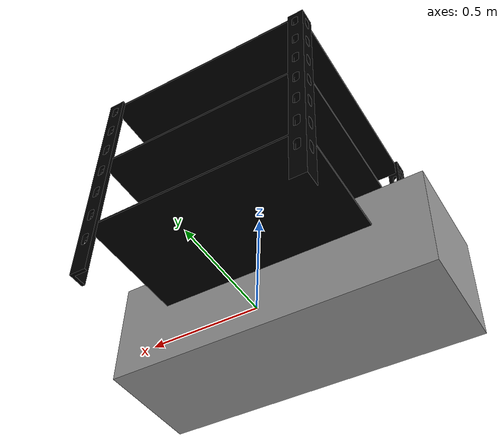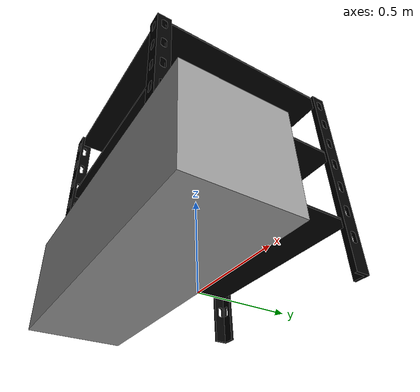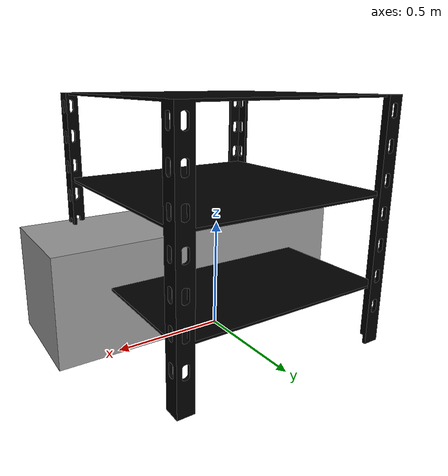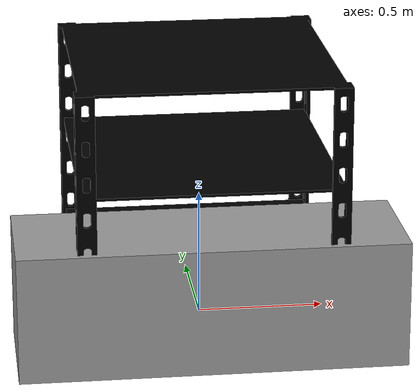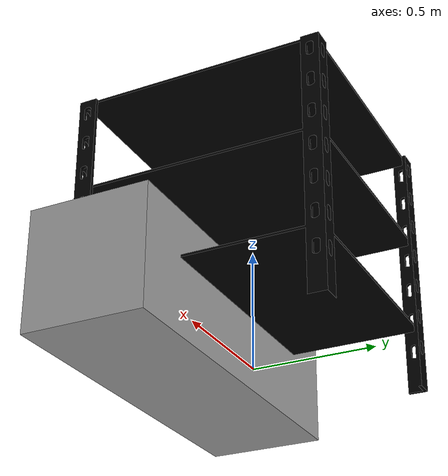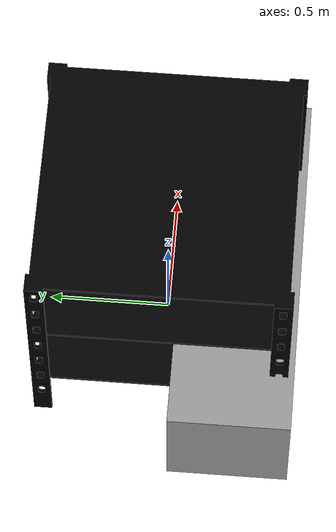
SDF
<?xml version='1.0'?>
<sdf version='1.7'>
  <model name='shelf'>
    <link name='shelf_body'>
      <inertial>
        <mass>1000</mass>
        <inertia>
          <ixx>166.667</ixx>
          <ixy>0</ixy>
          <ixz>0</ixz>
          <iyy>166.667</iyy>
          <iyz>0</iyz>
          <izz>166.667</izz>
        </inertia>
        <pose>0 0 0 0 -0 0</pose>
      </inertial>
      <self_collide>0</self_collide>
      <enable_wind>0</enable_wind>
      <kinematic>0</kinematic>
      <pose>0 0 0 0 -0 0</pose>
      <gravity>1</gravity>
      <visual name='visual'>
        <geometry>
          <mesh>
            <uri>model://shelf/meshes/shelf.dae</uri>
            <scale>1.48 1.5 1</scale>
          </mesh>
        </geometry>
        <meta>
          <layer>2</layer>
        </meta>
        <material>
          <shader type='pixel'>
            <normal_map>__default__</normal_map>
          </shader>
          <script>
            <name>ModelPreview_3::link::visual_MATERIAL_</name>
            <uri>__default__</uri>
          </script>
          <ambient>0 0 0 1</ambient>
          <diffuse>0 0 0 1</diffuse>
          <specular>0 0 0 1</specular>
          <emissive>0 0 0 1</emissive>
        </material>
        <pose>0 0 0 0 -0 0</pose>
        <transparency>0</transparency>
        <cast_shadows>1</cast_shadows>
      </visual>
      <collision name='collision'>
        <laser_retro>0</laser_retro>
        <max_contacts>10</max_contacts>
        <pose>0 0 0 0 -0 0</pose>
        <geometry>
          <mesh>
            <uri>model://shelf/meshes/shelf.dae</uri>
            <scale>1.5 1.5 1</scale>
          </mesh>
        </geometry>
        <surface>
          <friction>
            <ode>
              <mu>0.5</mu>
              <mu2>0.5</mu2>
              <fdir1>0 0 0</fdir1>
              <slip1>0</slip1>
              <slip2>0</slip2>
            </ode>
            <torsional>
              <coefficient>1</coefficient>
              <patch_radius>0</patch_radius>
              <surface_radius>0</surface_radius>
              <use_patch_radius>1</use_patch_radius>
              <ode>
                <slip>0</slip>
              </ode>
            </torsional>
          </friction>
          <bounce>
            <restitution_coefficient>0</restitution_coefficient>
            <threshold>1e+06</threshold>
          </bounce>
          <contact>
            <collide_without_contact>0</collide_without_contact>
            <collide_without_contact_bitmask>1</collide_without_contact_bitmask>
            <collide_bitmask>1</collide_bitmask>
            <ode>
              <soft_cfm>0</soft_cfm>
              <soft_erp>0.2</soft_erp>
              <kp>1e+13</kp>
              <kd>1</kd>
              <max_vel>0.01</max_vel>
              <min_depth>0</min_depth>
            </ode>
            <bullet>
              <split_impulse>1</split_impulse>
              <split_impulse_penetration_threshold>-0.01</split_impulse_penetration_threshold>
              <soft_cfm>0</soft_cfm>
              <soft_erp>0.2</soft_erp>
              <kp>1e+13</kp>
              <kd>1</kd>
            </bullet>
          </contact>
        </surface>
      </collision>
    </link>
    <link name='shelf_base'>
      <inertial>
        <mass>0.0281819</mass>
        <inertia>
          <ixx>0.00019984</ixx>
          <ixy>0</ixy>
          <ixz>0</ixz>
          <iyy>0.00237353</iyy>
          <iyz>0</iyz>
          <izz>0.00252328</izz>
        </inertia>
        <pose>0 0 0 0 -0 0</pose>
      </inertial>
      <pose>0 -0.3 0.206581 0 -0 0</pose>
      <gravity>1</gravity>
      <self_collide>0</self_collide>
      <kinematic>0</kinematic>
      <enable_wind>0</enable_wind>
      <visual name='visual'>
        <pose>0 0 0 0 -0 0</pose>
        <geometry>
          <box>
            <size>1.5 0.5 0.5</size>
          </box>
        </geometry>
        <material>
          <lighting>1</lighting>
          <script>
            <uri>file://media/materials/scripts/gazebo.material</uri>
            <name>Gazebo/Grey</name>
          </script>
          <shader type='pixel'>
            <normal_map>__default__</normal_map>
          </shader>
          <ambient>0.3 0.3 0.3 1</ambient>
          <diffuse>0.7 0.7 0.7 1</diffuse>
          <specular>0.01 0.01 0.01 1</specular>
          <emissive>0 0 0 1</emissive>
        </material>
        <transparency>0</transparency>
        <cast_shadows>1</cast_shadows>
      </visual>
      <collision name='collision'>
        <laser_retro>0</laser_retro>
        <max_contacts>10</max_contacts>
        <pose>0 0 0 0 -0 0</pose>
        <geometry>
          <box>
            <size>1.5 0.5 0.5</size>
          </box>
        </geometry>
        <surface>
          <friction>
            <ode>
              <mu>1</mu>
              <mu2>1</mu2>
              <fdir1>0 0 0</fdir1>
              <slip1>0</slip1>
              <slip2>0</slip2>
            </ode>
            <torsional>
              <coefficient>1</coefficient>
              <patch_radius>0</patch_radius>
              <surface_radius>0</surface_radius>
              <use_patch_radius>1</use_patch_radius>
              <ode>
                <slip>0</slip>
              </ode>
            </torsional>
          </friction>
          <bounce>
            <restitution_coefficient>0</restitution_coefficient>
            <threshold>1e+06</threshold>
          </bounce>
          <contact>
            <collide_without_contact>0</collide_without_contact>
            <collide_without_contact_bitmask>1</collide_without_contact_bitmask>
            <collide_bitmask>1</collide_bitmask>
            <ode>
              <soft_cfm>0</soft_cfm>
              <soft_erp>0.2</soft_erp>
              <kp>1e+13</kp>
              <kd>1</kd>
              <max_vel>0.01</max_vel>
              <min_depth>0</min_depth>
            </ode>
            <bullet>
              <split_impulse>1</split_impulse>
              <split_impulse_penetration_threshold>-0.01</split_impulse_penetration_threshold>
              <soft_cfm>0</soft_cfm>
              <soft_erp>0.2</soft_erp>
              <kp>1e+13</kp>
              <kd>1</kd>
            </bullet>
          </contact>
        </surface>
      </collision>
    </link>
    <static>1</static>
    <allow_auto_disable>1</allow_auto_disable>
  </model>
</sdf>
